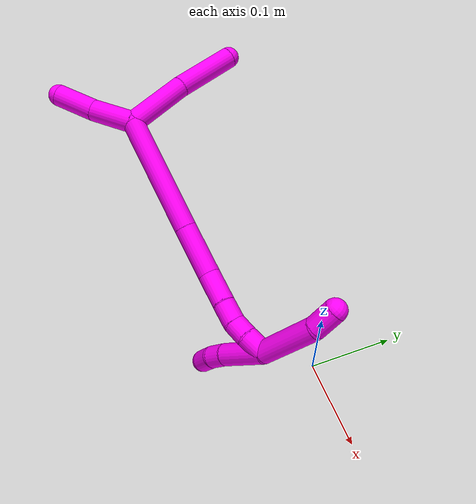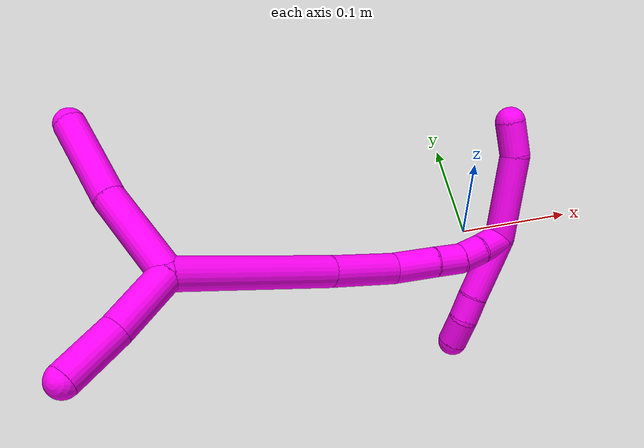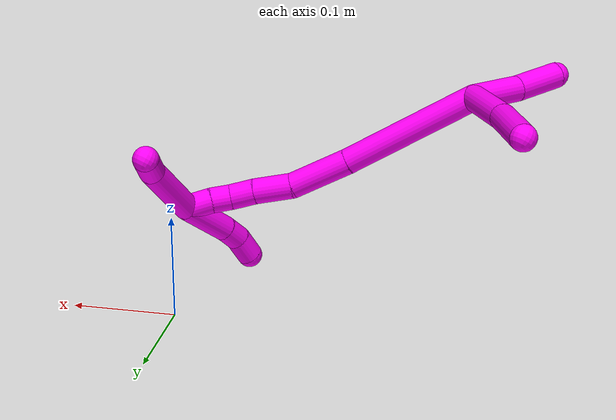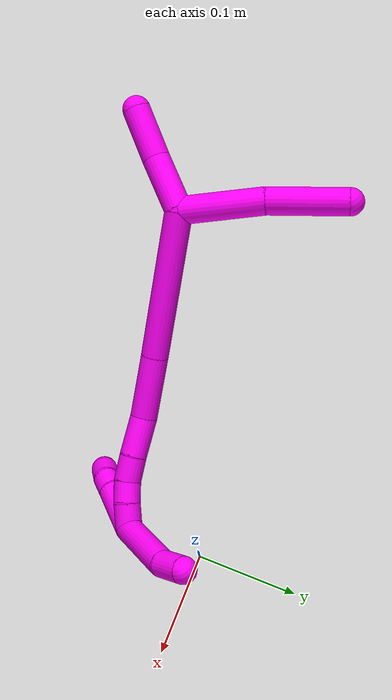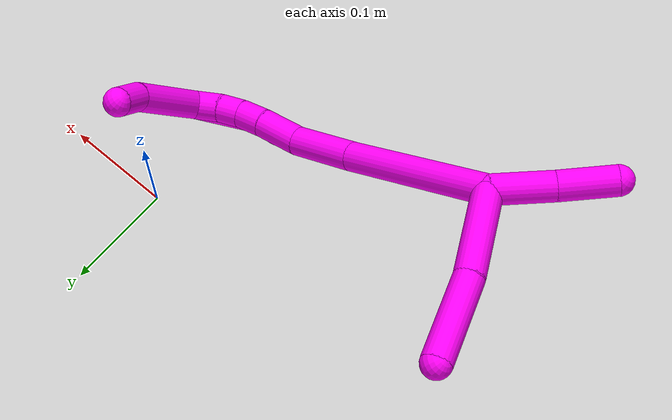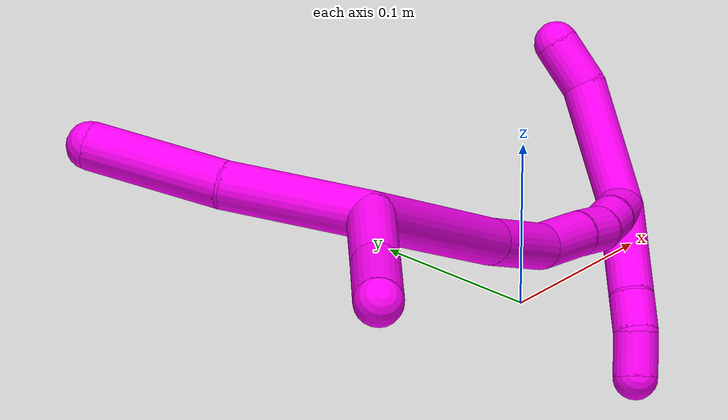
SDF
<sdf version="1.7">
 <world name="default">
  <model name="10">
   <static>0</static>
   <link name="10">
    <collision name="collision-cylinder-e_1_2_8">
     <pose>-0.02959 0.022402 -0.008521 -1.93426 -0.890002 1.21018</pose>
     <geometry><cylinder><radius>0.0125</radius><length>0.076158</length></cylinder></geometry>
     <surface>
      <friction><ode><mu>1.16</mu><mu2>1.16</mu2><slip1>0</slip1><slip2>0</slip2></ode></friction>
      <contact><ode><kp>1e+06</kp><kd>1</kd><max_vel>0</max_vel><min_depth>0.001</min_depth></ode></contact>
     </surface>
    </collision>
    <visual name="visual-cylinder-e_1_2_8">
     <pose>-0.02959 0.022402 -0.008521 -1.93426 -0.890002 1.21018</pose>
     <geometry><cylinder><radius>0.0125</radius><length>0.076158</length></cylinder></geometry>
     <material><ambient>1 0 0.964706 1</ambient></material>
    </visual>
    <collision name="collision-cylinder-e_2_8_6">
     <pose>-0.084554 0.069502 -0.027496 -1.97119 -0.757685 1.08194</pose>
     <geometry><cylinder><radius>0.0125</radius><length>0.073842</length></cylinder></geometry>
     <surface>
      <friction><ode><mu>1.16</mu><mu2>1.16</mu2><slip1>0</slip1><slip2>0</slip2></ode></friction>
      <contact><ode><kp>1e+06</kp><kd>1</kd><max_vel>0</max_vel><min_depth>0.001</min_depth></ode></contact>
     </surface>
    </collision>
    <visual name="visual-cylinder-e_2_8_6">
     <pose>-0.084554 0.069502 -0.027496 -1.97119 -0.757685 1.08194</pose>
     <geometry><cylinder><radius>0.0125</radius><length>0.073842</length></cylinder></geometry>
     <material><ambient>1 0 0.964706 1</ambient></material>
    </visual>
    <collision name="collision-cylinder-e_1_2_9">
     <pose>-0.008542 -0.018955 0.015649 0.880654 -0.334455 -0.15874</pose>
     <geometry><cylinder><radius>0.0125</radius><length>0.052044</length></cylinder></geometry>
     <surface>
      <friction><ode><mu>1.16</mu><mu2>1.16</mu2><slip1>0</slip1><slip2>0</slip2></ode></friction>
      <contact><ode><kp>1e+06</kp><kd>1</kd><max_vel>0</max_vel><min_depth>0.001</min_depth></ode></contact>
     </surface>
    </collision>
    <visual name="visual-cylinder-e_1_2_9">
     <pose>-0.008542 -0.018955 0.015649 0.880654 -0.334455 -0.15874</pose>
     <geometry><cylinder><radius>0.0125</radius><length>0.052044</length></cylinder></geometry>
     <material><ambient>1 0 0.964706 1</ambient></material>
    </visual>
    <collision name="collision-cylinder-e_2_9_5">
     <pose>-0.02494 -0.053343 0.047882 0.749436 -0.333829 -0.132335</pose>
     <geometry><cylinder><radius>0.0125</radius><length>0.047956</length></cylinder></geometry>
     <surface>
      <friction><ode><mu>1.16</mu><mu2>1.16</mu2><slip1>0</slip1><slip2>0</slip2></ode></friction>
      <contact><ode><kp>1e+06</kp><kd>1</kd><max_vel>0</max_vel><min_depth>0.001</min_depth></ode></contact>
     </surface>
    </collision>
    <visual name="visual-cylinder-e_2_9_5">
     <pose>-0.02494 -0.053343 0.047882 0.749436 -0.333829 -0.132335</pose>
     <geometry><cylinder><radius>0.0125</radius><length>0.047956</length></cylinder></geometry>
     <material><ambient>1 0 0.964706 1</ambient></material>
    </visual>
    <collision name="collision-cylinder-e_1_2_10">
     <pose>0.043131 0.00402 -0.05186 -3.06423 0.692287 -2.92779</pose>
     <geometry><cylinder><radius>0.0125</radius><length>0.135144</length></cylinder></geometry>
     <surface>
      <friction><ode><mu>1.16</mu><mu2>1.16</mu2><slip1>0</slip1><slip2>0</slip2></ode></friction>
      <contact><ode><kp>1e+06</kp><kd>1</kd><max_vel>0</max_vel><min_depth>0.001</min_depth></ode></contact>
     </surface>
    </collision>
    <visual name="visual-cylinder-e_1_2_10">
     <pose>0.043131 0.00402 -0.05186 -3.06423 0.692287 -2.92779</pose>
     <geometry><cylinder><radius>0.0125</radius><length>0.135144</length></cylinder></geometry>
     <material><ambient>1 0 0.964706 1</ambient></material>
    </visual>
    <collision name="collision-cylinder-e_2_10_11">
     <pose>0.105992 0.01084 -0.125497 -3.01374 0.732061 -2.81063</pose>
     <geometry><cylinder><radius>0.0125</radius><length>0.059037</length></cylinder></geometry>
     <surface>
      <friction><ode><mu>1.16</mu><mu2>1.16</mu2><slip1>0</slip1><slip2>0</slip2></ode></friction>
      <contact><ode><kp>1e+06</kp><kd>1</kd><max_vel>0</max_vel><min_depth>0.001</min_depth></ode></contact>
     </surface>
    </collision>
    <visual name="visual-cylinder-e_2_10_11">
     <pose>0.105992 0.01084 -0.125497 -3.01374 0.732061 -2.81063</pose>
     <geometry><cylinder><radius>0.0125</radius><length>0.059037</length></cylinder></geometry>
     <material><ambient>1 0 0.964706 1</ambient></material>
    </visual>
    <collision name="collision-cylinder-e_3_11_12">
     <pose>0.14066 0.017893 -0.157653 -2.75266 0.926688 -2.39059</pose>
     <geometry><cylinder><radius>0.0125</radius><length>0.03736</length></cylinder></geometry>
     <surface>
      <friction><ode><mu>1.16</mu><mu2>1.16</mu2><slip1>0</slip1><slip2>0</slip2></ode></friction>
      <contact><ode><kp>1e+06</kp><kd>1</kd><max_vel>0</max_vel><min_depth>0.001</min_depth></ode></contact>
     </surface>
    </collision>
    <visual name="visual-cylinder-e_3_11_12">
     <pose>0.14066 0.017893 -0.157653 -2.75266 0.926688 -2.39059</pose>
     <geometry><cylinder><radius>0.0125</radius><length>0.03736</length></cylinder></geometry>
     <material><ambient>1 0 0.964706 1</ambient></material>
    </visual>
    <collision name="collision-cylinder-e_4_12_13">
     <pose>0.164738 0.024573 -0.175609 -2.83163 0.854631 -2.48058</pose>
     <geometry><cylinder><radius>0.0125</radius><length>0.024236</length></cylinder></geometry>
     <surface>
      <friction><ode><mu>1.16</mu><mu2>1.16</mu2><slip1>0</slip1><slip2>0</slip2></ode></friction>
      <contact><ode><kp>1e+06</kp><kd>1</kd><max_vel>0</max_vel><min_depth>0.001</min_depth></ode></contact>
     </surface>
    </collision>
    <visual name="visual-cylinder-e_4_12_13">
     <pose>0.164738 0.024573 -0.175609 -2.83163 0.854631 -2.48058</pose>
     <geometry><cylinder><radius>0.0125</radius><length>0.024236</length></cylinder></geometry>
     <material><ambient>1 0 0.964706 1</ambient></material>
    </visual>
    <collision name="collision-cylinder-e_5_13_14">
     <pose>0.180526 0.031464 -0.189249 -2.50695 0.723222 -1.71157</pose>
     <geometry><cylinder><radius>0.0125</radius><length>0.020089</length></cylinder></geometry>
     <surface>
      <friction><ode><mu>1.16</mu><mu2>1.16</mu2><slip1>0</slip1><slip2>0</slip2></ode></friction>
      <contact><ode><kp>1e+06</kp><kd>1</kd><max_vel>0</max_vel><min_depth>0.001</min_depth></ode></contact>
     </surface>
    </collision>
    <visual name="visual-cylinder-e_5_13_14">
     <pose>0.180526 0.031464 -0.189249 -2.50695 0.723222 -1.71157</pose>
     <geometry><cylinder><radius>0.0125</radius><length>0.020089</length></cylinder></geometry>
     <material><ambient>1 0 0.964706 1</ambient></material>
    </visual>
    <collision name="collision-cylinder-e_6_14_1">
     <pose>0.193991 0.041268 -0.203717 -2.5756 0.600351 -1.63316</pose>
     <geometry><cylinder><radius>0.0125</radius><length>0.024135</length></cylinder></geometry>
     <surface>
      <friction><ode><mu>1.16</mu><mu2>1.16</mu2><slip1>0</slip1><slip2>0</slip2></ode></friction>
      <contact><ode><kp>1e+06</kp><kd>1</kd><max_vel>0</max_vel><min_depth>0.001</min_depth></ode></contact>
     </surface>
    </collision>
    <visual name="visual-cylinder-e_6_14_1">
     <pose>0.193991 0.041268 -0.203717 -2.5756 0.600351 -1.63316</pose>
     <geometry><cylinder><radius>0.0125</radius><length>0.024135</length></cylinder></geometry>
     <material><ambient>1 0 0.964706 1</ambient></material>
    </visual>
    <collision name="collision-cylinder-e_1_1_15">
     <pose>0.203111 0.081763 -0.206195 -1.40378 0.064506 -0.054547</pose>
     <geometry><cylinder><radius>0.0125</radius><length>0.071451</length></cylinder></geometry>
     <surface>
      <friction><ode><mu>1.16</mu><mu2>1.16</mu2><slip1>0</slip1><slip2>0</slip2></ode></friction>
      <contact><ode><kp>1e+06</kp><kd>1</kd><max_vel>0</max_vel><min_depth>0.001</min_depth></ode></contact>
     </surface>
    </collision>
    <visual name="visual-cylinder-e_1_1_15">
     <pose>0.203111 0.081763 -0.206195 -1.40378 0.064506 -0.054547</pose>
     <geometry><cylinder><radius>0.0125</radius><length>0.071451</length></cylinder></geometry>
     <material><ambient>1 0 0.964706 1</ambient></material>
    </visual>
    <collision name="collision-cylinder-e_2_15_4">
     <pose>0.201877 0.130421 -0.197279 -1.35295 -0.250386 0.201395</pose>
     <geometry><cylinder><radius>0.0125</radius><length>0.028549</length></cylinder></geometry>
     <surface>
      <friction><ode><mu>1.16</mu><mu2>1.16</mu2><slip1>0</slip1><slip2>0</slip2></ode></friction>
      <contact><ode><kp>1e+06</kp><kd>1</kd><max_vel>0</max_vel><min_depth>0.001</min_depth></ode></contact>
     </surface>
    </collision>
    <visual name="visual-cylinder-e_2_15_4">
     <pose>0.201877 0.130421 -0.197279 -1.35295 -0.250386 0.201395</pose>
     <geometry><cylinder><radius>0.0125</radius><length>0.028549</length></cylinder></geometry>
     <material><ambient>1 0 0.964706 1</ambient></material>
    </visual>
    <collision name="collision-cylinder-e_1_1_16">
     <pose>0.19304 0.020769 -0.211849 1.56025 -0.292032 -0.289012</pose>
     <geometry><cylinder><radius>0.0125</radius><length>0.053965</length></cylinder></geometry>
     <surface>
      <friction><ode><mu>1.16</mu><mu2>1.16</mu2><slip1>0</slip1><slip2>0</slip2></ode></friction>
      <contact><ode><kp>1e+06</kp><kd>1</kd><max_vel>0</max_vel><min_depth>0.001</min_depth></ode></contact>
     </surface>
    </collision>
    <visual name="visual-cylinder-e_1_1_16">
     <pose>0.19304 0.020769 -0.211849 1.56025 -0.292032 -0.289012</pose>
     <geometry><cylinder><radius>0.0125</radius><length>0.053965</length></cylinder></geometry>
     <material><ambient>1 0 0.964706 1</ambient></material>
    </visual>
    <collision name="collision-cylinder-e_2_16_17">
     <pose>0.18245 -0.015347 -0.212592 1.6692 -0.266687 -0.293934</pose>
     <geometry><cylinder><radius>0.0125</radius><length>0.021412</length></cylinder></geometry>
     <surface>
      <friction><ode><mu>1.16</mu><mu2>1.16</mu2><slip1>0</slip1><slip2>0</slip2></ode></friction>
      <contact><ode><kp>1e+06</kp><kd>1</kd><max_vel>0</max_vel><min_depth>0.001</min_depth></ode></contact>
     </surface>
    </collision>
    <visual name="visual-cylinder-e_2_16_17">
     <pose>0.18245 -0.015347 -0.212592 1.6692 -0.266687 -0.293934</pose>
     <geometry><cylinder><radius>0.0125</radius><length>0.021412</length></cylinder></geometry>
     <material><ambient>1 0 0.964706 1</ambient></material>
    </visual>
    <collision name="collision-cylinder-e_3_17_3">
     <pose>0.175807 -0.036523 -0.217871 1.94381 -0.315662 -0.458191</pose>
     <geometry><cylinder><radius>0.0125</radius><length>0.024622</length></cylinder></geometry>
     <surface>
      <friction><ode><mu>1.16</mu><mu2>1.16</mu2><slip1>0</slip1><slip2>0</slip2></ode></friction>
      <contact><ode><kp>1e+06</kp><kd>1</kd><max_vel>0</max_vel><min_depth>0.001</min_depth></ode></contact>
     </surface>
    </collision>
    <visual name="visual-cylinder-e_3_17_3">
     <pose>0.175807 -0.036523 -0.217871 1.94381 -0.315662 -0.458191</pose>
     <geometry><cylinder><radius>0.0125</radius><length>0.024622</length></cylinder></geometry>
     <material><ambient>1 0 0.964706 1</ambient></material>
    </visual>
    <collision name="collision-sphere-3">
     <pose>0.171985 -0.047421 -0.222136 0 -0 0</pose>
     <geometry><sphere><radius>0.0125</radius></sphere></geometry>
     <surface>
      <friction><ode><mu>1.16</mu><mu2>1.16</mu2><slip1>0</slip1><slip2>0</slip2></ode></friction>
      <contact><ode><kp>1e+06</kp><kd>1</kd><max_vel>0</max_vel><min_depth>0.001</min_depth></ode></contact>
     </surface>
    </collision>
    <visual name="visual-sphere-3">
     <pose>0.171985 -0.047421 -0.222136 0 -0 0</pose>
     <geometry><sphere><radius>0.0125</radius></sphere></geometry>
     <material><ambient>1 0 0.964706 1</ambient></material>
    </visual>
    <collision name="collision-sphere-17">
     <pose>0.179629 -0.025625 -0.213606 0 -0 0</pose>
     <geometry><sphere><radius>0.0125</radius></sphere></geometry>
     <surface>
      <friction><ode><mu>1.16</mu><mu2>1.16</mu2><slip1>0</slip1><slip2>0</slip2></ode></friction>
      <contact><ode><kp>1e+06</kp><kd>1</kd><max_vel>0</max_vel><min_depth>0.001</min_depth></ode></contact>
     </surface>
    </collision>
    <visual name="visual-sphere-17">
     <pose>0.179629 -0.025625 -0.213606 0 -0 0</pose>
     <geometry><sphere><radius>0.0125</radius></sphere></geometry>
     <material><ambient>1 0 0.964706 1</ambient></material>
    </visual>
    <collision name="collision-sphere-16">
     <pose>0.185272 -0.00507 -0.211577 0 -0 0</pose>
     <geometry><sphere><radius>0.0125</radius></sphere></geometry>
     <surface>
      <friction><ode><mu>1.16</mu><mu2>1.16</mu2><slip1>0</slip1><slip2>0</slip2></ode></friction>
      <contact><ode><kp>1e+06</kp><kd>1</kd><max_vel>0</max_vel><min_depth>0.001</min_depth></ode></contact>
     </surface>
    </collision>
    <visual name="visual-sphere-16">
     <pose>0.185272 -0.00507 -0.211577 0 -0 0</pose>
     <geometry><sphere><radius>0.0125</radius></sphere></geometry>
     <material><ambient>1 0 0.964706 1</ambient></material>
    </visual>
    <collision name="collision-sphere-4">
     <pose>0.19834 0.143923 -0.19429 0 -0 0</pose>
     <geometry><sphere><radius>0.0125</radius></sphere></geometry>
     <surface>
      <friction><ode><mu>1.16</mu><mu2>1.16</mu2><slip1>0</slip1><slip2>0</slip2></ode></friction>
      <contact><ode><kp>1e+06</kp><kd>1</kd><max_vel>0</max_vel><min_depth>0.001</min_depth></ode></contact>
     </surface>
    </collision>
    <visual name="visual-sphere-4">
     <pose>0.19834 0.143923 -0.19429 0 -0 0</pose>
     <geometry><sphere><radius>0.0125</radius></sphere></geometry>
     <material><ambient>1 0 0.964706 1</ambient></material>
    </visual>
    <collision name="collision-sphere-15">
     <pose>0.205414 0.116919 -0.200268 0 -0 0</pose>
     <geometry><sphere><radius>0.0125</radius></sphere></geometry>
     <surface>
      <friction><ode><mu>1.16</mu><mu2>1.16</mu2><slip1>0</slip1><slip2>0</slip2></ode></friction>
      <contact><ode><kp>1e+06</kp><kd>1</kd><max_vel>0</max_vel><min_depth>0.001</min_depth></ode></contact>
     </surface>
    </collision>
    <visual name="visual-sphere-15">
     <pose>0.205414 0.116919 -0.200268 0 -0 0</pose>
     <geometry><sphere><radius>0.0125</radius></sphere></geometry>
     <material><ambient>1 0 0.964706 1</ambient></material>
    </visual>
    <collision name="collision-sphere-1">
     <pose>0.200808 0.046608 -0.212122 0 -0 0</pose>
     <geometry><sphere><radius>0.0125</radius></sphere></geometry>
     <surface>
      <friction><ode><mu>1.16</mu><mu2>1.16</mu2><slip1>0</slip1><slip2>0</slip2></ode></friction>
      <contact><ode><kp>1e+06</kp><kd>1</kd><max_vel>0</max_vel><min_depth>0.001</min_depth></ode></contact>
     </surface>
    </collision>
    <visual name="visual-sphere-1">
     <pose>0.200808 0.046608 -0.212122 0 -0 0</pose>
     <geometry><sphere><radius>0.0125</radius></sphere></geometry>
     <material><ambient>1 0 0.964706 1</ambient></material>
    </visual>
    <collision name="collision-sphere-14">
     <pose>0.187174 0.035929 -0.195313 0 -0 0</pose>
     <geometry><sphere><radius>0.0125</radius></sphere></geometry>
     <surface>
      <friction><ode><mu>1.16</mu><mu2>1.16</mu2><slip1>0</slip1><slip2>0</slip2></ode></friction>
      <contact><ode><kp>1e+06</kp><kd>1</kd><max_vel>0</max_vel><min_depth>0.001</min_depth></ode></contact>
     </surface>
    </collision>
    <visual name="visual-sphere-14">
     <pose>0.187174 0.035929 -0.195313 0 -0 0</pose>
     <geometry><sphere><radius>0.0125</radius></sphere></geometry>
     <material><ambient>1 0 0.964706 1</ambient></material>
    </visual>
    <collision name="collision-sphere-13">
     <pose>0.173879 0.027 -0.183185 0 -0 0</pose>
     <geometry><sphere><radius>0.0125</radius></sphere></geometry>
     <surface>
      <friction><ode><mu>1.16</mu><mu2>1.16</mu2><slip1>0</slip1><slip2>0</slip2></ode></friction>
      <contact><ode><kp>1e+06</kp><kd>1</kd><max_vel>0</max_vel><min_depth>0.001</min_depth></ode></contact>
     </surface>
    </collision>
    <visual name="visual-sphere-13">
     <pose>0.173879 0.027 -0.183185 0 -0 0</pose>
     <geometry><sphere><radius>0.0125</radius></sphere></geometry>
     <material><ambient>1 0 0.964706 1</ambient></material>
    </visual>
    <collision name="collision-sphere-12">
     <pose>0.155597 0.022147 -0.168033 0 -0 0</pose>
     <geometry><sphere><radius>0.0125</radius></sphere></geometry>
     <surface>
      <friction><ode><mu>1.16</mu><mu2>1.16</mu2><slip1>0</slip1><slip2>0</slip2></ode></friction>
      <contact><ode><kp>1e+06</kp><kd>1</kd><max_vel>0</max_vel><min_depth>0.001</min_depth></ode></contact>
     </surface>
    </collision>
    <visual name="visual-sphere-12">
     <pose>0.155597 0.022147 -0.168033 0 -0 0</pose>
     <geometry><sphere><radius>0.0125</radius></sphere></geometry>
     <material><ambient>1 0 0.964706 1</ambient></material>
    </visual>
    <collision name="collision-sphere-11">
     <pose>0.125723 0.01364 -0.147274 0 -0 0</pose>
     <geometry><sphere><radius>0.0125</radius></sphere></geometry>
     <surface>
      <friction><ode><mu>1.16</mu><mu2>1.16</mu2><slip1>0</slip1><slip2>0</slip2></ode></friction>
      <contact><ode><kp>1e+06</kp><kd>1</kd><max_vel>0</max_vel><min_depth>0.001</min_depth></ode></contact>
     </surface>
    </collision>
    <visual name="visual-sphere-11">
     <pose>0.125723 0.01364 -0.147274 0 -0 0</pose>
     <geometry><sphere><radius>0.0125</radius></sphere></geometry>
     <material><ambient>1 0 0.964706 1</ambient></material>
    </visual>
    <collision name="collision-sphere-8">
     <pose>-0.059181 0.044803 -0.017041 0 -0 0</pose>
     <geometry><sphere><radius>0.0125</radius></sphere></geometry>
     <surface>
      <friction><ode><mu>1.16</mu><mu2>1.16</mu2><slip1>0</slip1><slip2>0</slip2></ode></friction>
      <contact><ode><kp>1e+06</kp><kd>1</kd><max_vel>0</max_vel><min_depth>0.001</min_depth></ode></contact>
     </surface>
    </collision>
    <visual name="visual-sphere-8">
     <pose>-0.059181 0.044803 -0.017041 0 -0 0</pose>
     <geometry><sphere><radius>0.0125</radius></sphere></geometry>
     <material><ambient>1 0 0.964706 1</ambient></material>
    </visual>
    <collision name="collision-sphere-2">
     <geometry><sphere><radius>0.0125</radius></sphere></geometry>
     <surface>
      <friction><ode><mu>1.16</mu><mu2>1.16</mu2><slip1>0</slip1><slip2>0</slip2></ode></friction>
      <contact><ode><kp>1e+06</kp><kd>1</kd><max_vel>0</max_vel><min_depth>0.001</min_depth></ode></contact>
     </surface>
    </collision>
    <visual name="visual-sphere-2">
     <geometry><sphere><radius>0.0125</radius></sphere></geometry>
     <material><ambient>1 0 0.964706 1</ambient></material>
    </visual>
    <collision name="collision-sphere-9">
     <pose>-0.017084 -0.03791 0.031297 0 -0 0</pose>
     <geometry><sphere><radius>0.0125</radius></sphere></geometry>
     <surface>
      <friction><ode><mu>1.16</mu><mu2>1.16</mu2><slip1>0</slip1><slip2>0</slip2></ode></friction>
      <contact><ode><kp>1e+06</kp><kd>1</kd><max_vel>0</max_vel><min_depth>0.001</min_depth></ode></contact>
     </surface>
    </collision>
    <visual name="visual-sphere-9">
     <pose>-0.017084 -0.03791 0.031297 0 -0 0</pose>
     <geometry><sphere><radius>0.0125</radius></sphere></geometry>
     <material><ambient>1 0 0.964706 1</ambient></material>
    </visual>
    <collision name="collision-sphere-6">
     <pose>-0.109928 0.094201 -0.03795 0 -0 0</pose>
     <geometry><sphere><radius>0.0125</radius></sphere></geometry>
     <surface>
      <friction><ode><mu>1.16</mu><mu2>1.16</mu2><slip1>0</slip1><slip2>0</slip2></ode></friction>
      <contact><ode><kp>1e+06</kp><kd>1</kd><max_vel>0</max_vel><min_depth>0.001</min_depth></ode></contact>
     </surface>
    </collision>
    <visual name="visual-sphere-6">
     <pose>-0.109928 0.094201 -0.03795 0 -0 0</pose>
     <geometry><sphere><radius>0.0125</radius></sphere></geometry>
     <material><ambient>1 0 0.964706 1</ambient></material>
    </visual>
    <collision name="collision-sphere-5">
     <pose>-0.032797 -0.068776 0.064467 0 -0 0</pose>
     <geometry><sphere><radius>0.0125</radius></sphere></geometry>
     <surface>
      <friction><ode><mu>1.16</mu><mu2>1.16</mu2><slip1>0</slip1><slip2>0</slip2></ode></friction>
      <contact><ode><kp>1e+06</kp><kd>1</kd><max_vel>0</max_vel><min_depth>0.001</min_depth></ode></contact>
     </surface>
    </collision>
    <visual name="visual-sphere-5">
     <pose>-0.032797 -0.068776 0.064467 0 -0 0</pose>
     <geometry><sphere><radius>0.0125</radius></sphere></geometry>
     <material><ambient>1 0 0.964706 1</ambient></material>
    </visual>
    <collision name="collision-sphere-10">
     <pose>0.086262 0.008041 -0.103721 0 -0 0</pose>
     <geometry><sphere><radius>0.0125</radius></sphere></geometry>
     <surface>
      <friction><ode><mu>1.16</mu><mu2>1.16</mu2><slip1>0</slip1><slip2>0</slip2></ode></friction>
      <contact><ode><kp>1e+06</kp><kd>1</kd><max_vel>0</max_vel><min_depth>0.001</min_depth></ode></contact>
     </surface>
    </collision>
    <visual name="visual-sphere-10">
     <pose>0.086262 0.008041 -0.103721 0 -0 0</pose>
     <geometry><sphere><radius>0.0125</radius></sphere></geometry>
     <material><ambient>1 0 0.964706 1</ambient></material>
    </visual>
    <inertial>
     <pose>0.077911 0.022437 -0.099419 0 -0 0</pose>
     <mass>0.75</mass>
     <inertia>
      <ixx>-8.5e-05</ixx>
      <ixy>0</ixy>
      <ixz>0</ixz>
      <iyy>0.000293</iyy>
      <iyz>0</iyz>
      <izz>-0.000168</izz>
     </inertia>
    </inertial>
   </link>
   <pose>-0.263472 -0.122036 0.195424 0.664916 -0.119636 -0.458989</pose>
  </model>
 </world>
</sdf>
